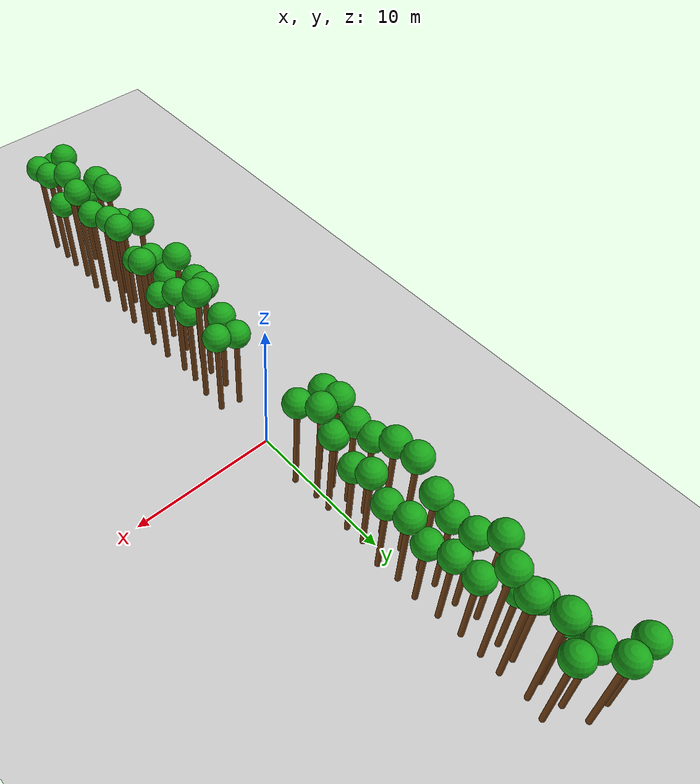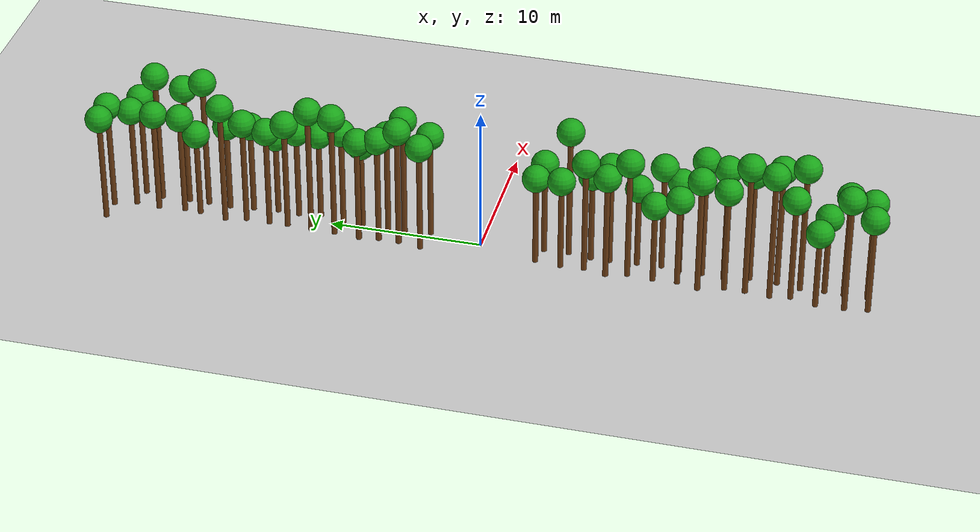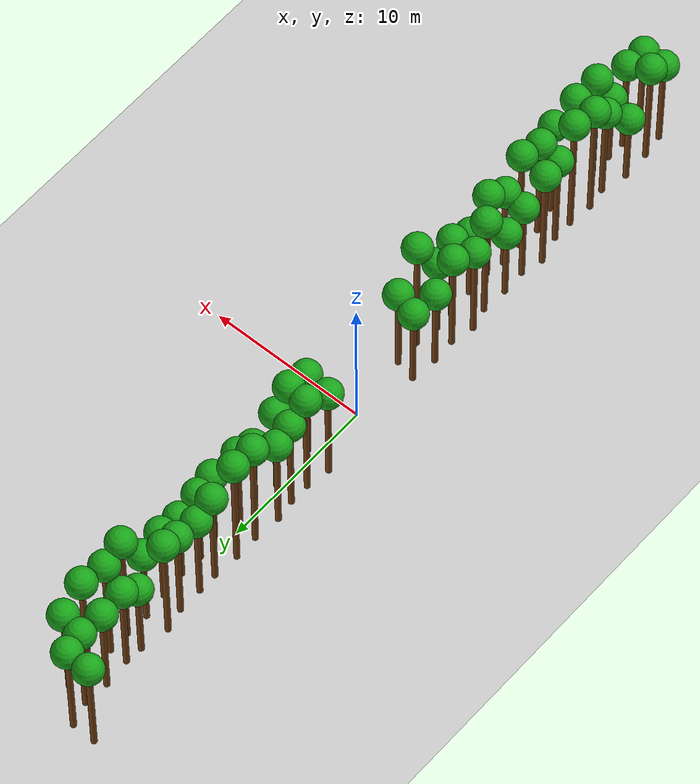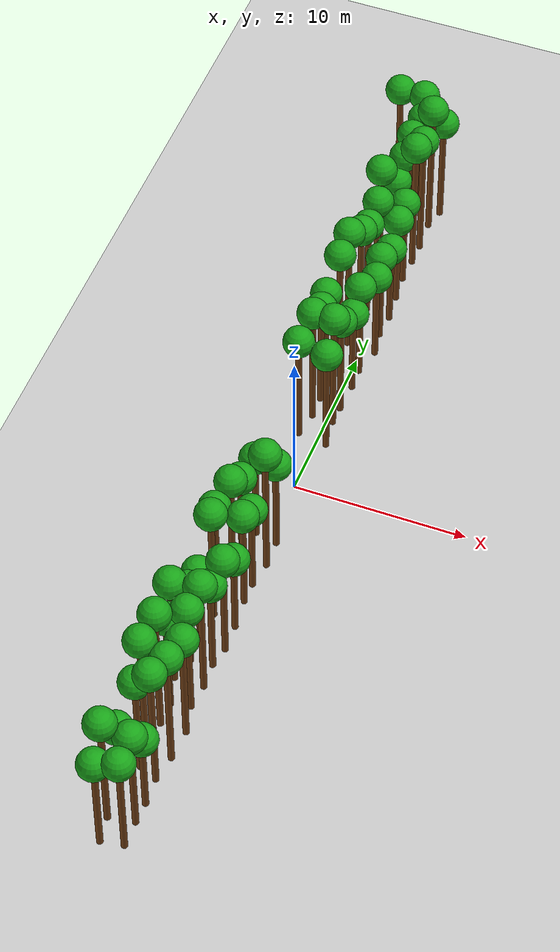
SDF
<sdf version="1.6">
 <world name="forest_world">
  <include><uri>model://sun</uri></include>
  <include><uri>model://ground_plane</uri></include>
  <model name="tree_541">
   <static>true</static>
   <link name="trunk">
    <collision name="collision">
     <pose>-2.70 24.53 3.54 0 0 0</pose>
     <geometry><cylinder><radius>0.18</radius><length>7.07</length></cylinder></geometry>
    </collision>
    <visual name="trunk_visual">
     <pose>-2.70 24.53 3.54 0 0 0</pose>
     <geometry><cylinder><radius>0.18</radius><length>7.07</length></cylinder></geometry>
     <material><ambient>0.35 0.20 0.05 1</ambient><diffuse>0.45 0.25 0.08 1</diffuse></material>
    </visual>
    <visual name="leaf_visual">
     <pose>-2.70 24.53 7.52 0 0 0</pose>
     <geometry><sphere><radius>0.9</radius></sphere></geometry>
     <material><ambient>0.05 0.45 0.05 1</ambient><diffuse>0.10 0.65 0.10 1</diffuse></material>
    </visual>
   </link>
  </model>
  <model name="tree_542">
   <static>true</static>
   <link name="trunk">
    <collision name="collision">
     <pose>-0.90 -25.18 3.19 0 0 0</pose>
     <geometry><cylinder><radius>0.18</radius><length>6.38</length></cylinder></geometry>
    </collision>
    <visual name="trunk_visual">
     <pose>-0.90 -25.18 3.19 0 0 0</pose>
     <geometry><cylinder><radius>0.18</radius><length>6.38</length></cylinder></geometry>
     <material><ambient>0.35 0.20 0.05 1</ambient><diffuse>0.45 0.25 0.08 1</diffuse></material>
    </visual>
    <visual name="leaf_visual">
     <pose>-0.90 -25.18 6.83 0 0 0</pose>
     <geometry><sphere><radius>0.9</radius></sphere></geometry>
     <material><ambient>0.05 0.45 0.05 1</ambient><diffuse>0.10 0.65 0.10 1</diffuse></material>
    </visual>
   </link>
  </model>
  <model name="tree_543">
   <static>true</static>
   <link name="trunk">
    <collision name="collision">
     <pose>-1.11 -23.72 3.88 0 0 0</pose>
     <geometry><cylinder><radius>0.18</radius><length>7.76</length></cylinder></geometry>
    </collision>
    <visual name="trunk_visual">
     <pose>-1.11 -23.72 3.88 0 0 0</pose>
     <geometry><cylinder><radius>0.18</radius><length>7.76</length></cylinder></geometry>
     <material><ambient>0.35 0.20 0.05 1</ambient><diffuse>0.45 0.25 0.08 1</diffuse></material>
    </visual>
    <visual name="leaf_visual">
     <pose>-1.11 -23.72 8.21 0 0 0</pose>
     <geometry><sphere><radius>0.9</radius></sphere></geometry>
     <material><ambient>0.05 0.45 0.05 1</ambient><diffuse>0.10 0.65 0.10 1</diffuse></material>
    </visual>
   </link>
  </model>
  <model name="tree_544">
   <static>true</static>
   <link name="trunk">
    <collision name="collision">
     <pose>-1.16 -21.90 2.51 0 0 0</pose>
     <geometry><cylinder><radius>0.18</radius><length>5.01</length></cylinder></geometry>
    </collision>
    <visual name="trunk_visual">
     <pose>-1.16 -21.90 2.51 0 0 0</pose>
     <geometry><cylinder><radius>0.18</radius><length>5.01</length></cylinder></geometry>
     <material><ambient>0.35 0.20 0.05 1</ambient><diffuse>0.45 0.25 0.08 1</diffuse></material>
    </visual>
    <visual name="leaf_visual">
     <pose>-1.16 -21.90 5.46 0 0 0</pose>
     <geometry><sphere><radius>0.9</radius></sphere></geometry>
     <material><ambient>0.05 0.45 0.05 1</ambient><diffuse>0.10 0.65 0.10 1</diffuse></material>
    </visual>
   </link>
  </model>
  <model name="tree_545">
   <static>true</static>
   <link name="trunk">
    <collision name="collision">
     <pose>-0.75 -20.26 3.47 0 0 0</pose>
     <geometry><cylinder><radius>0.18</radius><length>6.94</length></cylinder></geometry>
    </collision>
    <visual name="trunk_visual">
     <pose>-0.75 -20.26 3.47 0 0 0</pose>
     <geometry><cylinder><radius>0.18</radius><length>6.94</length></cylinder></geometry>
     <material><ambient>0.35 0.20 0.05 1</ambient><diffuse>0.45 0.25 0.08 1</diffuse></material>
    </visual>
    <visual name="leaf_visual">
     <pose>-0.75 -20.26 7.39 0 0 0</pose>
     <geometry><sphere><radius>0.9</radius></sphere></geometry>
     <material><ambient>0.05 0.45 0.05 1</ambient><diffuse>0.10 0.65 0.10 1</diffuse></material>
    </visual>
   </link>
  </model>
  <model name="tree_546">
   <static>true</static>
   <link name="trunk">
    <collision name="collision">
     <pose>-0.96 -18.96 4.32 0 0 0</pose>
     <geometry><cylinder><radius>0.18</radius><length>8.64</length></cylinder></geometry>
    </collision>
    <visual name="trunk_visual">
     <pose>-0.96 -18.96 4.32 0 0 0</pose>
     <geometry><cylinder><radius>0.18</radius><length>8.64</length></cylinder></geometry>
     <material><ambient>0.35 0.20 0.05 1</ambient><diffuse>0.45 0.25 0.08 1</diffuse></material>
    </visual>
    <visual name="leaf_visual">
     <pose>-0.96 -18.96 9.09 0 0 0</pose>
     <geometry><sphere><radius>0.9</radius></sphere></geometry>
     <material><ambient>0.05 0.45 0.05 1</ambient><diffuse>0.10 0.65 0.10 1</diffuse></material>
    </visual>
   </link>
  </model>
  <model name="tree_547">
   <static>true</static>
   <link name="trunk">
    <collision name="collision">
     <pose>-0.81 -17.38 4.47 0 0 0</pose>
     <geometry><cylinder><radius>0.18</radius><length>8.95</length></cylinder></geometry>
    </collision>
    <visual name="trunk_visual">
     <pose>-0.81 -17.38 4.47 0 0 0</pose>
     <geometry><cylinder><radius>0.18</radius><length>8.95</length></cylinder></geometry>
     <material><ambient>0.35 0.20 0.05 1</ambient><diffuse>0.45 0.25 0.08 1</diffuse></material>
    </visual>
    <visual name="leaf_visual">
     <pose>-0.81 -17.38 9.40 0 0 0</pose>
     <geometry><sphere><radius>0.9</radius></sphere></geometry>
     <material><ambient>0.05 0.45 0.05 1</ambient><diffuse>0.10 0.65 0.10 1</diffuse></material>
    </visual>
   </link>
  </model>
  <model name="tree_548">
   <static>true</static>
   <link name="trunk">
    <collision name="collision">
     <pose>-0.81 -16.05 3.47 0 0 0</pose>
     <geometry><cylinder><radius>0.18</radius><length>6.94</length></cylinder></geometry>
    </collision>
    <visual name="trunk_visual">
     <pose>-0.81 -16.05 3.47 0 0 0</pose>
     <geometry><cylinder><radius>0.18</radius><length>6.94</length></cylinder></geometry>
     <material><ambient>0.35 0.20 0.05 1</ambient><diffuse>0.45 0.25 0.08 1</diffuse></material>
    </visual>
    <visual name="leaf_visual">
     <pose>-0.81 -16.05 7.39 0 0 0</pose>
     <geometry><sphere><radius>0.9</radius></sphere></geometry>
     <material><ambient>0.05 0.45 0.05 1</ambient><diffuse>0.10 0.65 0.10 1</diffuse></material>
    </visual>
   </link>
  </model>
  <model name="tree_549">
   <static>true</static>
   <link name="trunk">
    <collision name="collision">
     <pose>-1.24 -14.41 3.86 0 0 0</pose>
     <geometry><cylinder><radius>0.18</radius><length>7.73</length></cylinder></geometry>
    </collision>
    <visual name="trunk_visual">
     <pose>-1.24 -14.41 3.86 0 0 0</pose>
     <geometry><cylinder><radius>0.18</radius><length>7.73</length></cylinder></geometry>
     <material><ambient>0.35 0.20 0.05 1</ambient><diffuse>0.45 0.25 0.08 1</diffuse></material>
    </visual>
    <visual name="leaf_visual">
     <pose>-1.24 -14.41 8.18 0 0 0</pose>
     <geometry><sphere><radius>0.9</radius></sphere></geometry>
     <material><ambient>0.05 0.45 0.05 1</ambient><diffuse>0.10 0.65 0.10 1</diffuse></material>
    </visual>
   </link>
  </model>
  <model name="tree_550">
   <static>true</static>
   <link name="trunk">
    <collision name="collision">
     <pose>-0.89 -13.04 2.93 0 0 0</pose>
     <geometry><cylinder><radius>0.18</radius><length>5.87</length></cylinder></geometry>
    </collision>
    <visual name="trunk_visual">
     <pose>-0.89 -13.04 2.93 0 0 0</pose>
     <geometry><cylinder><radius>0.18</radius><length>5.87</length></cylinder></geometry>
     <material><ambient>0.35 0.20 0.05 1</ambient><diffuse>0.45 0.25 0.08 1</diffuse></material>
    </visual>
    <visual name="leaf_visual">
     <pose>-0.89 -13.04 6.32 0 0 0</pose>
     <geometry><sphere><radius>0.9</radius></sphere></geometry>
     <material><ambient>0.05 0.45 0.05 1</ambient><diffuse>0.10 0.65 0.10 1</diffuse></material>
    </visual>
   </link>
  </model>
  <model name="tree_551">
   <static>true</static>
   <link name="trunk">
    <collision name="collision">
     <pose>-0.97 -11.48 2.61 0 0 0</pose>
     <geometry><cylinder><radius>0.18</radius><length>5.22</length></cylinder></geometry>
    </collision>
    <visual name="trunk_visual">
     <pose>-0.97 -11.48 2.61 0 0 0</pose>
     <geometry><cylinder><radius>0.18</radius><length>5.22</length></cylinder></geometry>
     <material><ambient>0.35 0.20 0.05 1</ambient><diffuse>0.45 0.25 0.08 1</diffuse></material>
    </visual>
    <visual name="leaf_visual">
     <pose>-0.97 -11.48 5.67 0 0 0</pose>
     <geometry><sphere><radius>0.9</radius></sphere></geometry>
     <material><ambient>0.05 0.45 0.05 1</ambient><diffuse>0.10 0.65 0.10 1</diffuse></material>
    </visual>
   </link>
  </model>
  <model name="tree_552">
   <static>true</static>
   <link name="trunk">
    <collision name="collision">
     <pose>-0.86 -9.81 4.03 0 0 0</pose>
     <geometry><cylinder><radius>0.18</radius><length>8.06</length></cylinder></geometry>
    </collision>
    <visual name="trunk_visual">
     <pose>-0.86 -9.81 4.03 0 0 0</pose>
     <geometry><cylinder><radius>0.18</radius><length>8.06</length></cylinder></geometry>
     <material><ambient>0.35 0.20 0.05 1</ambient><diffuse>0.45 0.25 0.08 1</diffuse></material>
    </visual>
    <visual name="leaf_visual">
     <pose>-0.86 -9.81 8.51 0 0 0</pose>
     <geometry><sphere><radius>0.9</radius></sphere></geometry>
     <material><ambient>0.05 0.45 0.05 1</ambient><diffuse>0.10 0.65 0.10 1</diffuse></material>
    </visual>
   </link>
  </model>
  <model name="tree_553">
   <static>true</static>
   <link name="trunk">
    <collision name="collision">
     <pose>-1.20 -8.46 3.48 0 0 0</pose>
     <geometry><cylinder><radius>0.18</radius><length>6.96</length></cylinder></geometry>
    </collision>
    <visual name="trunk_visual">
     <pose>-1.20 -8.46 3.48 0 0 0</pose>
     <geometry><cylinder><radius>0.18</radius><length>6.96</length></cylinder></geometry>
     <material><ambient>0.35 0.20 0.05 1</ambient><diffuse>0.45 0.25 0.08 1</diffuse></material>
    </visual>
    <visual name="leaf_visual">
     <pose>-1.20 -8.46 7.41 0 0 0</pose>
     <geometry><sphere><radius>0.9</radius></sphere></geometry>
     <material><ambient>0.05 0.45 0.05 1</ambient><diffuse>0.10 0.65 0.10 1</diffuse></material>
    </visual>
   </link>
  </model>
  <model name="tree_554">
   <static>true</static>
   <link name="trunk">
    <collision name="collision">
     <pose>-0.88 -7.00 3.79 0 0 0</pose>
     <geometry><cylinder><radius>0.18</radius><length>7.57</length></cylinder></geometry>
    </collision>
    <visual name="trunk_visual">
     <pose>-0.88 -7.00 3.79 0 0 0</pose>
     <geometry><cylinder><radius>0.18</radius><length>7.57</length></cylinder></geometry>
     <material><ambient>0.35 0.20 0.05 1</ambient><diffuse>0.45 0.25 0.08 1</diffuse></material>
    </visual>
    <visual name="leaf_visual">
     <pose>-0.88 -7.00 8.02 0 0 0</pose>
     <geometry><sphere><radius>0.9</radius></sphere></geometry>
     <material><ambient>0.05 0.45 0.05 1</ambient><diffuse>0.10 0.65 0.10 1</diffuse></material>
    </visual>
   </link>
  </model>
  <model name="tree_555">
   <static>true</static>
   <link name="trunk">
    <collision name="collision">
     <pose>-0.95 -5.47 3.02 0 0 0</pose>
     <geometry><cylinder><radius>0.18</radius><length>6.05</length></cylinder></geometry>
    </collision>
    <visual name="trunk_visual">
     <pose>-0.95 -5.47 3.02 0 0 0</pose>
     <geometry><cylinder><radius>0.18</radius><length>6.05</length></cylinder></geometry>
     <material><ambient>0.35 0.20 0.05 1</ambient><diffuse>0.45 0.25 0.08 1</diffuse></material>
    </visual>
    <visual name="leaf_visual">
     <pose>-0.95 -5.47 6.50 0 0 0</pose>
     <geometry><sphere><radius>0.9</radius></sphere></geometry>
     <material><ambient>0.05 0.45 0.05 1</ambient><diffuse>0.10 0.65 0.10 1</diffuse></material>
    </visual>
   </link>
  </model>
  <model name="tree_556">
   <static>true</static>
   <link name="trunk">
    <collision name="collision">
     <pose>-0.78 -3.79 2.95 0 0 0</pose>
     <geometry><cylinder><radius>0.18</radius><length>5.90</length></cylinder></geometry>
    </collision>
    <visual name="trunk_visual">
     <pose>-0.78 -3.79 2.95 0 0 0</pose>
     <geometry><cylinder><radius>0.18</radius><length>5.90</length></cylinder></geometry>
     <material><ambient>0.35 0.20 0.05 1</ambient><diffuse>0.45 0.25 0.08 1</diffuse></material>
    </visual>
    <visual name="leaf_visual">
     <pose>-0.78 -3.79 6.35 0 0 0</pose>
     <geometry><sphere><radius>0.9</radius></sphere></geometry>
     <material><ambient>0.05 0.45 0.05 1</ambient><diffuse>0.10 0.65 0.10 1</diffuse></material>
    </visual>
   </link>
  </model>
  <model name="tree_557">
   <static>true</static>
   <link name="trunk">
    <collision name="collision">
     <pose>-1.16 3.73 3.60 0 0 0</pose>
     <geometry><cylinder><radius>0.18</radius><length>7.21</length></cylinder></geometry>
    </collision>
    <visual name="trunk_visual">
     <pose>-1.16 3.73 3.60 0 0 0</pose>
     <geometry><cylinder><radius>0.18</radius><length>7.21</length></cylinder></geometry>
     <material><ambient>0.35 0.20 0.05 1</ambient><diffuse>0.45 0.25 0.08 1</diffuse></material>
    </visual>
    <visual name="leaf_visual">
     <pose>-1.16 3.73 7.66 0 0 0</pose>
     <geometry><sphere><radius>0.9</radius></sphere></geometry>
     <material><ambient>0.05 0.45 0.05 1</ambient><diffuse>0.10 0.65 0.10 1</diffuse></material>
    </visual>
   </link>
  </model>
  <model name="tree_558">
   <static>true</static>
   <link name="trunk">
    <collision name="collision">
     <pose>-0.91 5.23 4.02 0 0 0</pose>
     <geometry><cylinder><radius>0.18</radius><length>8.05</length></cylinder></geometry>
    </collision>
    <visual name="trunk_visual">
     <pose>-0.91 5.23 4.02 0 0 0</pose>
     <geometry><cylinder><radius>0.18</radius><length>8.05</length></cylinder></geometry>
     <material><ambient>0.35 0.20 0.05 1</ambient><diffuse>0.45 0.25 0.08 1</diffuse></material>
    </visual>
    <visual name="leaf_visual">
     <pose>-0.91 5.23 8.50 0 0 0</pose>
     <geometry><sphere><radius>0.9</radius></sphere></geometry>
     <material><ambient>0.05 0.45 0.05 1</ambient><diffuse>0.10 0.65 0.10 1</diffuse></material>
    </visual>
   </link>
  </model>
  <model name="tree_559">
   <static>true</static>
   <link name="trunk">
    <collision name="collision">
     <pose>-0.92 6.56 3.58 0 0 0</pose>
     <geometry><cylinder><radius>0.18</radius><length>7.15</length></cylinder></geometry>
    </collision>
    <visual name="trunk_visual">
     <pose>-0.92 6.56 3.58 0 0 0</pose>
     <geometry><cylinder><radius>0.18</radius><length>7.15</length></cylinder></geometry>
     <material><ambient>0.35 0.20 0.05 1</ambient><diffuse>0.45 0.25 0.08 1</diffuse></material>
    </visual>
    <visual name="leaf_visual">
     <pose>-0.92 6.56 7.60 0 0 0</pose>
     <geometry><sphere><radius>0.9</radius></sphere></geometry>
     <material><ambient>0.05 0.45 0.05 1</ambient><diffuse>0.10 0.65 0.10 1</diffuse></material>
    </visual>
   </link>
  </model>
  <model name="tree_560">
   <static>true</static>
   <link name="trunk">
    <collision name="collision">
     <pose>-1.10 7.84 3.48 0 0 0</pose>
     <geometry><cylinder><radius>0.18</radius><length>6.96</length></cylinder></geometry>
    </collision>
    <visual name="trunk_visual">
     <pose>-1.10 7.84 3.48 0 0 0</pose>
     <geometry><cylinder><radius>0.18</radius><length>6.96</length></cylinder></geometry>
     <material><ambient>0.35 0.20 0.05 1</ambient><diffuse>0.45 0.25 0.08 1</diffuse></material>
    </visual>
    <visual name="leaf_visual">
     <pose>-1.10 7.84 7.41 0 0 0</pose>
     <geometry><sphere><radius>0.9</radius></sphere></geometry>
     <material><ambient>0.05 0.45 0.05 1</ambient><diffuse>0.10 0.65 0.10 1</diffuse></material>
    </visual>
   </link>
  </model>
  <model name="tree_561">
   <static>true</static>
   <link name="trunk">
    <collision name="collision">
     <pose>-0.93 9.54 4.19 0 0 0</pose>
     <geometry><cylinder><radius>0.18</radius><length>8.39</length></cylinder></geometry>
    </collision>
    <visual name="trunk_visual">
     <pose>-0.93 9.54 4.19 0 0 0</pose>
     <geometry><cylinder><radius>0.18</radius><length>8.39</length></cylinder></geometry>
     <material><ambient>0.35 0.20 0.05 1</ambient><diffuse>0.45 0.25 0.08 1</diffuse></material>
    </visual>
    <visual name="leaf_visual">
     <pose>-0.93 9.54 8.84 0 0 0</pose>
     <geometry><sphere><radius>0.9</radius></sphere></geometry>
     <material><ambient>0.05 0.45 0.05 1</ambient><diffuse>0.10 0.65 0.10 1</diffuse></material>
    </visual>
   </link>
  </model>
  <model name="tree_562">
   <static>true</static>
   <link name="trunk">
    <collision name="collision">
     <pose>-0.96 11.09 4.33 0 0 0</pose>
     <geometry><cylinder><radius>0.18</radius><length>8.65</length></cylinder></geometry>
    </collision>
    <visual name="trunk_visual">
     <pose>-0.96 11.09 4.33 0 0 0</pose>
     <geometry><cylinder><radius>0.18</radius><length>8.65</length></cylinder></geometry>
     <material><ambient>0.35 0.20 0.05 1</ambient><diffuse>0.45 0.25 0.08 1</diffuse></material>
    </visual>
    <visual name="leaf_visual">
     <pose>-0.96 11.09 9.10 0 0 0</pose>
     <geometry><sphere><radius>0.9</radius></sphere></geometry>
     <material><ambient>0.05 0.45 0.05 1</ambient><diffuse>0.10 0.65 0.10 1</diffuse></material>
    </visual>
   </link>
  </model>
  <model name="tree_563">
   <static>true</static>
   <link name="trunk">
    <collision name="collision">
     <pose>-0.83 12.73 3.66 0 0 0</pose>
     <geometry><cylinder><radius>0.18</radius><length>7.32</length></cylinder></geometry>
    </collision>
    <visual name="trunk_visual">
     <pose>-0.83 12.73 3.66 0 0 0</pose>
     <geometry><cylinder><radius>0.18</radius><length>7.32</length></cylinder></geometry>
     <material><ambient>0.35 0.20 0.05 1</ambient><diffuse>0.45 0.25 0.08 1</diffuse></material>
    </visual>
    <visual name="leaf_visual">
     <pose>-0.83 12.73 7.77 0 0 0</pose>
     <geometry><sphere><radius>0.9</radius></sphere></geometry>
     <material><ambient>0.05 0.45 0.05 1</ambient><diffuse>0.10 0.65 0.10 1</diffuse></material>
    </visual>
   </link>
  </model>
  <model name="tree_564">
   <static>true</static>
   <link name="trunk">
    <collision name="collision">
     <pose>-0.84 13.97 3.29 0 0 0</pose>
     <geometry><cylinder><radius>0.18</radius><length>6.59</length></cylinder></geometry>
    </collision>
    <visual name="trunk_visual">
     <pose>-0.84 13.97 3.29 0 0 0</pose>
     <geometry><cylinder><radius>0.18</radius><length>6.59</length></cylinder></geometry>
     <material><ambient>0.35 0.20 0.05 1</ambient><diffuse>0.45 0.25 0.08 1</diffuse></material>
    </visual>
    <visual name="leaf_visual">
     <pose>-0.84 13.97 7.04 0 0 0</pose>
     <geometry><sphere><radius>0.9</radius></sphere></geometry>
     <material><ambient>0.05 0.45 0.05 1</ambient><diffuse>0.10 0.65 0.10 1</diffuse></material>
    </visual>
   </link>
  </model>
  <model name="tree_565">
   <static>true</static>
   <link name="trunk">
    <collision name="collision">
     <pose>-0.84 15.53 3.48 0 0 0</pose>
     <geometry><cylinder><radius>0.18</radius><length>6.97</length></cylinder></geometry>
    </collision>
    <visual name="trunk_visual">
     <pose>-0.84 15.53 3.48 0 0 0</pose>
     <geometry><cylinder><radius>0.18</radius><length>6.97</length></cylinder></geometry>
     <material><ambient>0.35 0.20 0.05 1</ambient><diffuse>0.45 0.25 0.08 1</diffuse></material>
    </visual>
    <visual name="leaf_visual">
     <pose>-0.84 15.53 7.42 0 0 0</pose>
     <geometry><sphere><radius>0.9</radius></sphere></geometry>
     <material><ambient>0.05 0.45 0.05 1</ambient><diffuse>0.10 0.65 0.10 1</diffuse></material>
    </visual>
   </link>
  </model>
  <model name="tree_566">
   <static>true</static>
   <link name="trunk">
    <collision name="collision">
     <pose>-1.15 16.88 4.06 0 0 0</pose>
     <geometry><cylinder><radius>0.18</radius><length>8.11</length></cylinder></geometry>
    </collision>
    <visual name="trunk_visual">
     <pose>-1.15 16.88 4.06 0 0 0</pose>
     <geometry><cylinder><radius>0.18</radius><length>8.11</length></cylinder></geometry>
     <material><ambient>0.35 0.20 0.05 1</ambient><diffuse>0.45 0.25 0.08 1</diffuse></material>
    </visual>
    <visual name="leaf_visual">
     <pose>-1.15 16.88 8.56 0 0 0</pose>
     <geometry><sphere><radius>0.9</radius></sphere></geometry>
     <material><ambient>0.05 0.45 0.05 1</ambient><diffuse>0.10 0.65 0.10 1</diffuse></material>
    </visual>
   </link>
  </model>
  <model name="tree_567">
   <static>true</static>
   <link name="trunk">
    <collision name="collision">
     <pose>-0.84 18.69 2.82 0 0 0</pose>
     <geometry><cylinder><radius>0.18</radius><length>5.64</length></cylinder></geometry>
    </collision>
    <visual name="trunk_visual">
     <pose>-0.84 18.69 2.82 0 0 0</pose>
     <geometry><cylinder><radius>0.18</radius><length>5.64</length></cylinder></geometry>
     <material><ambient>0.35 0.20 0.05 1</ambient><diffuse>0.45 0.25 0.08 1</diffuse></material>
    </visual>
    <visual name="leaf_visual">
     <pose>-0.84 18.69 6.09 0 0 0</pose>
     <geometry><sphere><radius>0.9</radius></sphere></geometry>
     <material><ambient>0.05 0.45 0.05 1</ambient><diffuse>0.10 0.65 0.10 1</diffuse></material>
    </visual>
   </link>
  </model>
  <model name="tree_568">
   <static>true</static>
   <link name="trunk">
    <collision name="collision">
     <pose>-0.76 19.78 3.34 0 0 0</pose>
     <geometry><cylinder><radius>0.18</radius><length>6.67</length></cylinder></geometry>
    </collision>
    <visual name="trunk_visual">
     <pose>-0.76 19.78 3.34 0 0 0</pose>
     <geometry><cylinder><radius>0.18</radius><length>6.67</length></cylinder></geometry>
     <material><ambient>0.35 0.20 0.05 1</ambient><diffuse>0.45 0.25 0.08 1</diffuse></material>
    </visual>
    <visual name="leaf_visual">
     <pose>-0.76 19.78 7.12 0 0 0</pose>
     <geometry><sphere><radius>0.9</radius></sphere></geometry>
     <material><ambient>0.05 0.45 0.05 1</ambient><diffuse>0.10 0.65 0.10 1</diffuse></material>
    </visual>
   </link>
  </model>
  <model name="tree_569">
   <static>true</static>
   <link name="trunk">
    <collision name="collision">
     <pose>-0.91 21.51 3.38 0 0 0</pose>
     <geometry><cylinder><radius>0.18</radius><length>6.75</length></cylinder></geometry>
    </collision>
    <visual name="trunk_visual">
     <pose>-0.91 21.51 3.38 0 0 0</pose>
     <geometry><cylinder><radius>0.18</radius><length>6.75</length></cylinder></geometry>
     <material><ambient>0.35 0.20 0.05 1</ambient><diffuse>0.45 0.25 0.08 1</diffuse></material>
    </visual>
    <visual name="leaf_visual">
     <pose>-0.91 21.51 7.20 0 0 0</pose>
     <geometry><sphere><radius>0.9</radius></sphere></geometry>
     <material><ambient>0.05 0.45 0.05 1</ambient><diffuse>0.10 0.65 0.10 1</diffuse></material>
    </visual>
   </link>
  </model>
  <model name="tree_570">
   <static>true</static>
   <link name="trunk">
    <collision name="collision">
     <pose>-0.80 23.08 3.36 0 0 0</pose>
     <geometry><cylinder><radius>0.18</radius><length>6.72</length></cylinder></geometry>
    </collision>
    <visual name="trunk_visual">
     <pose>-0.80 23.08 3.36 0 0 0</pose>
     <geometry><cylinder><radius>0.18</radius><length>6.72</length></cylinder></geometry>
     <material><ambient>0.35 0.20 0.05 1</ambient><diffuse>0.45 0.25 0.08 1</diffuse></material>
    </visual>
    <visual name="leaf_visual">
     <pose>-0.80 23.08 7.17 0 0 0</pose>
     <geometry><sphere><radius>0.9</radius></sphere></geometry>
     <material><ambient>0.05 0.45 0.05 1</ambient><diffuse>0.10 0.65 0.10 1</diffuse></material>
    </visual>
   </link>
  </model>
  <model name="tree_571">
   <static>true</static>
   <link name="trunk">
    <collision name="collision">
     <pose>-1.21 24.50 3.55 0 0 0</pose>
     <geometry><cylinder><radius>0.18</radius><length>7.11</length></cylinder></geometry>
    </collision>
    <visual name="trunk_visual">
     <pose>-1.21 24.50 3.55 0 0 0</pose>
     <geometry><cylinder><radius>0.18</radius><length>7.11</length></cylinder></geometry>
     <material><ambient>0.35 0.20 0.05 1</ambient><diffuse>0.45 0.25 0.08 1</diffuse></material>
    </visual>
    <visual name="leaf_visual">
     <pose>-1.21 24.50 7.56 0 0 0</pose>
     <geometry><sphere><radius>0.9</radius></sphere></geometry>
     <material><ambient>0.05 0.45 0.05 1</ambient><diffuse>0.10 0.65 0.10 1</diffuse></material>
    </visual>
   </link>
  </model>
  <model name="tree_572">
   <static>true</static>
   <link name="trunk">
    <collision name="collision">
     <pose>0.36 -24.97 3.38 0 0 0</pose>
     <geometry><cylinder><radius>0.18</radius><length>6.76</length></cylinder></geometry>
    </collision>
    <visual name="trunk_visual">
     <pose>0.36 -24.97 3.38 0 0 0</pose>
     <geometry><cylinder><radius>0.18</radius><length>6.76</length></cylinder></geometry>
     <material><ambient>0.35 0.20 0.05 1</ambient><diffuse>0.45 0.25 0.08 1</diffuse></material>
    </visual>
    <visual name="leaf_visual">
     <pose>0.36 -24.97 7.21 0 0 0</pose>
     <geometry><sphere><radius>0.9</radius></sphere></geometry>
     <material><ambient>0.05 0.45 0.05 1</ambient><diffuse>0.10 0.65 0.10 1</diffuse></material>
    </visual>
   </link>
  </model>
  <model name="tree_573">
   <static>true</static>
   <link name="trunk">
    <collision name="collision">
     <pose>0.35 -23.48 3.52 0 0 0</pose>
     <geometry><cylinder><radius>0.18</radius><length>7.04</length></cylinder></geometry>
    </collision>
    <visual name="trunk_visual">
     <pose>0.35 -23.48 3.52 0 0 0</pose>
     <geometry><cylinder><radius>0.18</radius><length>7.04</length></cylinder></geometry>
     <material><ambient>0.35 0.20 0.05 1</ambient><diffuse>0.45 0.25 0.08 1</diffuse></material>
    </visual>
    <visual name="leaf_visual">
     <pose>0.35 -23.48 7.49 0 0 0</pose>
     <geometry><sphere><radius>0.9</radius></sphere></geometry>
     <material><ambient>0.05 0.45 0.05 1</ambient><diffuse>0.10 0.65 0.10 1</diffuse></material>
    </visual>
   </link>
  </model>
  <model name="tree_574">
   <static>true</static>
   <link name="trunk">
    <collision name="collision">
     <pose>0.38 -22.25 2.61 0 0 0</pose>
     <geometry><cylinder><radius>0.18</radius><length>5.22</length></cylinder></geometry>
    </collision>
    <visual name="trunk_visual">
     <pose>0.38 -22.25 2.61 0 0 0</pose>
     <geometry><cylinder><radius>0.18</radius><length>5.22</length></cylinder></geometry>
     <material><ambient>0.35 0.20 0.05 1</ambient><diffuse>0.45 0.25 0.08 1</diffuse></material>
    </visual>
    <visual name="leaf_visual">
     <pose>0.38 -22.25 5.67 0 0 0</pose>
     <geometry><sphere><radius>0.9</radius></sphere></geometry>
     <material><ambient>0.05 0.45 0.05 1</ambient><diffuse>0.10 0.65 0.10 1</diffuse></material>
    </visual>
   </link>
  </model>
  <model name="tree_575">
   <static>true</static>
   <link name="trunk">
    <collision name="collision">
     <pose>0.30 -20.70 4.33 0 0 0</pose>
     <geometry><cylinder><radius>0.18</radius><length>8.66</length></cylinder></geometry>
    </collision>
    <visual name="trunk_visual">
     <pose>0.30 -20.70 4.33 0 0 0</pose>
     <geometry><cylinder><radius>0.18</radius><length>8.66</length></cylinder></geometry>
     <material><ambient>0.35 0.20 0.05 1</ambient><diffuse>0.45 0.25 0.08 1</diffuse></material>
    </visual>
    <visual name="leaf_visual">
     <pose>0.30 -20.70 9.11 0 0 0</pose>
     <geometry><sphere><radius>0.9</radius></sphere></geometry>
     <material><ambient>0.05 0.45 0.05 1</ambient><diffuse>0.10 0.65 0.10 1</diffuse></material>
    </visual>
   </link>
  </model>
  <model name="tree_576">
   <static>true</static>
   <link name="trunk">
    <collision name="collision">
     <pose>0.54 -19.19 4.10 0 0 0</pose>
     <geometry><cylinder><radius>0.18</radius><length>8.20</length></cylinder></geometry>
    </collision>
    <visual name="trunk_visual">
     <pose>0.54 -19.19 4.10 0 0 0</pose>
     <geometry><cylinder><radius>0.18</radius><length>8.20</length></cylinder></geometry>
     <material><ambient>0.35 0.20 0.05 1</ambient><diffuse>0.45 0.25 0.08 1</diffuse></material>
    </visual>
    <visual name="leaf_visual">
     <pose>0.54 -19.19 8.65 0 0 0</pose>
     <geometry><sphere><radius>0.9</radius></sphere></geometry>
     <material><ambient>0.05 0.45 0.05 1</ambient><diffuse>0.10 0.65 0.10 1</diffuse></material>
    </visual>
   </link>
  </model>
  <model name="tree_577">
   <static>true</static>
   <link name="trunk">
    <collision name="collision">
     <pose>0.64 -17.42 3.76 0 0 0</pose>
     <geometry><cylinder><radius>0.18</radius><length>7.51</length></cylinder></geometry>
    </collision>
    <visual name="trunk_visual">
     <pose>0.64 -17.42 3.76 0 0 0</pose>
     <geometry><cylinder><radius>0.18</radius><length>7.51</length></cylinder></geometry>
     <material><ambient>0.35 0.20 0.05 1</ambient><diffuse>0.45 0.25 0.08 1</diffuse></material>
    </visual>
    <visual name="leaf_visual">
     <pose>0.64 -17.42 7.96 0 0 0</pose>
     <geometry><sphere><radius>0.9</radius></sphere></geometry>
     <material><ambient>0.05 0.45 0.05 1</ambient><diffuse>0.10 0.65 0.10 1</diffuse></material>
    </visual>
   </link>
  </model>
  <model name="tree_578">
   <static>true</static>
   <link name="trunk">
    <collision name="collision">
     <pose>0.26 -15.82 3.92 0 0 0</pose>
     <geometry><cylinder><radius>0.18</radius><length>7.85</length></cylinder></geometry>
    </collision>
    <visual name="trunk_visual">
     <pose>0.26 -15.82 3.92 0 0 0</pose>
     <geometry><cylinder><radius>0.18</radius><length>7.85</length></cylinder></geometry>
     <material><ambient>0.35 0.20 0.05 1</ambient><diffuse>0.45 0.25 0.08 1</diffuse></material>
    </visual>
    <visual name="leaf_visual">
     <pose>0.26 -15.82 8.30 0 0 0</pose>
     <geometry><sphere><radius>0.9</radius></sphere></geometry>
     <material><ambient>0.05 0.45 0.05 1</ambient><diffuse>0.10 0.65 0.10 1</diffuse></material>
    </visual>
   </link>
  </model>
  <model name="tree_579">
   <static>true</static>
   <link name="trunk">
    <collision name="collision">
     <pose>0.41 -14.39 4.07 0 0 0</pose>
     <geometry><cylinder><radius>0.18</radius><length>8.15</length></cylinder></geometry>
    </collision>
    <visual name="trunk_visual">
     <pose>0.41 -14.39 4.07 0 0 0</pose>
     <geometry><cylinder><radius>0.18</radius><length>8.15</length></cylinder></geometry>
     <material><ambient>0.35 0.20 0.05 1</ambient><diffuse>0.45 0.25 0.08 1</diffuse></material>
    </visual>
    <visual name="leaf_visual">
     <pose>0.41 -14.39 8.60 0 0 0</pose>
     <geometry><sphere><radius>0.9</radius></sphere></geometry>
     <material><ambient>0.05 0.45 0.05 1</ambient><diffuse>0.10 0.65 0.10 1</diffuse></material>
    </visual>
   </link>
  </model>
  <model name="tree_580">
   <static>true</static>
   <link name="trunk">
    <collision name="collision">
     <pose>0.32 -12.91 3.18 0 0 0</pose>
     <geometry><cylinder><radius>0.18</radius><length>6.37</length></cylinder></geometry>
    </collision>
    <visual name="trunk_visual">
     <pose>0.32 -12.91 3.18 0 0 0</pose>
     <geometry><cylinder><radius>0.18</radius><length>6.37</length></cylinder></geometry>
     <material><ambient>0.35 0.20 0.05 1</ambient><diffuse>0.45 0.25 0.08 1</diffuse></material>
    </visual>
    <visual name="leaf_visual">
     <pose>0.32 -12.91 6.82 0 0 0</pose>
     <geometry><sphere><radius>0.9</radius></sphere></geometry>
     <material><ambient>0.05 0.45 0.05 1</ambient><diffuse>0.10 0.65 0.10 1</diffuse></material>
    </visual>
   </link>
  </model>
  <model name="tree_581">
   <static>true</static>
   <link name="trunk">
    <collision name="collision">
     <pose>0.56 -11.74 3.57 0 0 0</pose>
     <geometry><cylinder><radius>0.18</radius><length>7.13</length></cylinder></geometry>
    </collision>
    <visual name="trunk_visual">
     <pose>0.56 -11.74 3.57 0 0 0</pose>
     <geometry><cylinder><radius>0.18</radius><length>7.13</length></cylinder></geometry>
     <material><ambient>0.35 0.20 0.05 1</ambient><diffuse>0.45 0.25 0.08 1</diffuse></material>
    </visual>
    <visual name="leaf_visual">
     <pose>0.56 -11.74 7.58 0 0 0</pose>
     <geometry><sphere><radius>0.9</radius></sphere></geometry>
     <material><ambient>0.05 0.45 0.05 1</ambient><diffuse>0.10 0.65 0.10 1</diffuse></material>
    </visual>
   </link>
  </model>
  <model name="tree_582">
   <static>true</static>
   <link name="trunk">
    <collision name="collision">
     <pose>0.50 -10.16 2.67 0 0 0</pose>
     <geometry><cylinder><radius>0.18</radius><length>5.34</length></cylinder></geometry>
    </collision>
    <visual name="trunk_visual">
     <pose>0.50 -10.16 2.67 0 0 0</pose>
     <geometry><cylinder><radius>0.18</radius><length>5.34</length></cylinder></geometry>
     <material><ambient>0.35 0.20 0.05 1</ambient><diffuse>0.45 0.25 0.08 1</diffuse></material>
    </visual>
    <visual name="leaf_visual">
     <pose>0.50 -10.16 5.79 0 0 0</pose>
     <geometry><sphere><radius>0.9</radius></sphere></geometry>
     <material><ambient>0.05 0.45 0.05 1</ambient><diffuse>0.10 0.65 0.10 1</diffuse></material>
    </visual>
   </link>
  </model>
  <model name="tree_583">
   <static>true</static>
   <link name="trunk">
    <collision name="collision">
     <pose>0.33 -8.40 3.40 0 0 0</pose>
     <geometry><cylinder><radius>0.18</radius><length>6.79</length></cylinder></geometry>
    </collision>
    <visual name="trunk_visual">
     <pose>0.33 -8.40 3.40 0 0 0</pose>
     <geometry><cylinder><radius>0.18</radius><length>6.79</length></cylinder></geometry>
     <material><ambient>0.35 0.20 0.05 1</ambient><diffuse>0.45 0.25 0.08 1</diffuse></material>
    </visual>
    <visual name="leaf_visual">
     <pose>0.33 -8.40 7.24 0 0 0</pose>
     <geometry><sphere><radius>0.9</radius></sphere></geometry>
     <material><ambient>0.05 0.45 0.05 1</ambient><diffuse>0.10 0.65 0.10 1</diffuse></material>
    </visual>
   </link>
  </model>
  <model name="tree_584">
   <static>true</static>
   <link name="trunk">
    <collision name="collision">
     <pose>0.33 -7.18 2.95 0 0 0</pose>
     <geometry><cylinder><radius>0.18</radius><length>5.90</length></cylinder></geometry>
    </collision>
    <visual name="trunk_visual">
     <pose>0.33 -7.18 2.95 0 0 0</pose>
     <geometry><cylinder><radius>0.18</radius><length>5.90</length></cylinder></geometry>
     <material><ambient>0.35 0.20 0.05 1</ambient><diffuse>0.45 0.25 0.08 1</diffuse></material>
    </visual>
    <visual name="leaf_visual">
     <pose>0.33 -7.18 6.35 0 0 0</pose>
     <geometry><sphere><radius>0.9</radius></sphere></geometry>
     <material><ambient>0.05 0.45 0.05 1</ambient><diffuse>0.10 0.65 0.10 1</diffuse></material>
    </visual>
   </link>
  </model>
  <model name="tree_585">
   <static>true</static>
   <link name="trunk">
    <collision name="collision">
     <pose>0.55 -5.68 4.42 0 0 0</pose>
     <geometry><cylinder><radius>0.18</radius><length>8.83</length></cylinder></geometry>
    </collision>
    <visual name="trunk_visual">
     <pose>0.55 -5.68 4.42 0 0 0</pose>
     <geometry><cylinder><radius>0.18</radius><length>8.83</length></cylinder></geometry>
     <material><ambient>0.35 0.20 0.05 1</ambient><diffuse>0.45 0.25 0.08 1</diffuse></material>
    </visual>
    <visual name="leaf_visual">
     <pose>0.55 -5.68 9.28 0 0 0</pose>
     <geometry><sphere><radius>0.9</radius></sphere></geometry>
     <material><ambient>0.05 0.45 0.05 1</ambient><diffuse>0.10 0.65 0.10 1</diffuse></material>
    </visual>
   </link>
  </model>
  <model name="tree_586">
   <static>true</static>
   <link name="trunk">
    <collision name="collision">
     <pose>0.50 -4.07 3.11 0 0 0</pose>
     <geometry><cylinder><radius>0.18</radius><length>6.21</length></cylinder></geometry>
    </collision>
    <visual name="trunk_visual">
     <pose>0.50 -4.07 3.11 0 0 0</pose>
     <geometry><cylinder><radius>0.18</radius><length>6.21</length></cylinder></geometry>
     <material><ambient>0.35 0.20 0.05 1</ambient><diffuse>0.45 0.25 0.08 1</diffuse></material>
    </visual>
    <visual name="leaf_visual">
     <pose>0.50 -4.07 6.66 0 0 0</pose>
     <geometry><sphere><radius>0.9</radius></sphere></geometry>
     <material><ambient>0.05 0.45 0.05 1</ambient><diffuse>0.10 0.65 0.10 1</diffuse></material>
    </visual>
   </link>
  </model>
  <model name="tree_587">
   <static>true</static>
   <link name="trunk">
    <collision name="collision">
     <pose>0.56 3.47 3.53 0 0 0</pose>
     <geometry><cylinder><radius>0.18</radius><length>7.06</length></cylinder></geometry>
    </collision>
    <visual name="trunk_visual">
     <pose>0.56 3.47 3.53 0 0 0</pose>
     <geometry><cylinder><radius>0.18</radius><length>7.06</length></cylinder></geometry>
     <material><ambient>0.35 0.20 0.05 1</ambient><diffuse>0.45 0.25 0.08 1</diffuse></material>
    </visual>
    <visual name="leaf_visual">
     <pose>0.56 3.47 7.51 0 0 0</pose>
     <geometry><sphere><radius>0.9</radius></sphere></geometry>
     <material><ambient>0.05 0.45 0.05 1</ambient><diffuse>0.10 0.65 0.10 1</diffuse></material>
    </visual>
   </link>
  </model>
  <model name="tree_588">
   <static>true</static>
   <link name="trunk">
    <collision name="collision">
     <pose>0.33 5.17 4.06 0 0 0</pose>
     <geometry><cylinder><radius>0.18</radius><length>8.12</length></cylinder></geometry>
    </collision>
    <visual name="trunk_visual">
     <pose>0.33 5.17 4.06 0 0 0</pose>
     <geometry><cylinder><radius>0.18</radius><length>8.12</length></cylinder></geometry>
     <material><ambient>0.35 0.20 0.05 1</ambient><diffuse>0.45 0.25 0.08 1</diffuse></material>
    </visual>
    <visual name="leaf_visual">
     <pose>0.33 5.17 8.57 0 0 0</pose>
     <geometry><sphere><radius>0.9</radius></sphere></geometry>
     <material><ambient>0.05 0.45 0.05 1</ambient><diffuse>0.10 0.65 0.10 1</diffuse></material>
    </visual>
   </link>
  </model>
  <model name="tree_589">
   <static>true</static>
   <link name="trunk">
    <collision name="collision">
     <pose>0.36 6.28 3.40 0 0 0</pose>
     <geometry><cylinder><radius>0.18</radius><length>6.81</length></cylinder></geometry>
    </collision>
    <visual name="trunk_visual">
     <pose>0.36 6.28 3.40 0 0 0</pose>
     <geometry><cylinder><radius>0.18</radius><length>6.81</length></cylinder></geometry>
     <material><ambient>0.35 0.20 0.05 1</ambient><diffuse>0.45 0.25 0.08 1</diffuse></material>
    </visual>
    <visual name="leaf_visual">
     <pose>0.36 6.28 7.26 0 0 0</pose>
     <geometry><sphere><radius>0.9</radius></sphere></geometry>
     <material><ambient>0.05 0.45 0.05 1</ambient><diffuse>0.10 0.65 0.10 1</diffuse></material>
    </visual>
   </link>
  </model>
  <model name="tree_590">
   <static>true</static>
   <link name="trunk">
    <collision name="collision">
     <pose>0.43 8.02 2.84 0 0 0</pose>
     <geometry><cylinder><radius>0.18</radius><length>5.67</length></cylinder></geometry>
    </collision>
    <visual name="trunk_visual">
     <pose>0.43 8.02 2.84 0 0 0</pose>
     <geometry><cylinder><radius>0.18</radius><length>5.67</length></cylinder></geometry>
     <material><ambient>0.35 0.20 0.05 1</ambient><diffuse>0.45 0.25 0.08 1</diffuse></material>
    </visual>
    <visual name="leaf_visual">
     <pose>0.43 8.02 6.12 0 0 0</pose>
     <geometry><sphere><radius>0.9</radius></sphere></geometry>
     <material><ambient>0.05 0.45 0.05 1</ambient><diffuse>0.10 0.65 0.10 1</diffuse></material>
    </visual>
   </link>
  </model>
  <model name="tree_591">
   <static>true</static>
   <link name="trunk">
    <collision name="collision">
     <pose>0.38 9.31 3.24 0 0 0</pose>
     <geometry><cylinder><radius>0.18</radius><length>6.48</length></cylinder></geometry>
    </collision>
    <visual name="trunk_visual">
     <pose>0.38 9.31 3.24 0 0 0</pose>
     <geometry><cylinder><radius>0.18</radius><length>6.48</length></cylinder></geometry>
     <material><ambient>0.35 0.20 0.05 1</ambient><diffuse>0.45 0.25 0.08 1</diffuse></material>
    </visual>
    <visual name="leaf_visual">
     <pose>0.38 9.31 6.93 0 0 0</pose>
     <geometry><sphere><radius>0.9</radius></sphere></geometry>
     <material><ambient>0.05 0.45 0.05 1</ambient><diffuse>0.10 0.65 0.10 1</diffuse></material>
    </visual>
   </link>
  </model>
  <model name="tree_592">
   <static>true</static>
   <link name="trunk">
    <collision name="collision">
     <pose>0.75 10.95 2.91 0 0 0</pose>
     <geometry><cylinder><radius>0.18</radius><length>5.83</length></cylinder></geometry>
    </collision>
    <visual name="trunk_visual">
     <pose>0.75 10.95 2.91 0 0 0</pose>
     <geometry><cylinder><radius>0.18</radius><length>5.83</length></cylinder></geometry>
     <material><ambient>0.35 0.20 0.05 1</ambient><diffuse>0.45 0.25 0.08 1</diffuse></material>
    </visual>
    <visual name="leaf_visual">
     <pose>0.75 10.95 6.28 0 0 0</pose>
     <geometry><sphere><radius>0.9</radius></sphere></geometry>
     <material><ambient>0.05 0.45 0.05 1</ambient><diffuse>0.10 0.65 0.10 1</diffuse></material>
    </visual>
   </link>
  </model>
  <model name="tree_593">
   <static>true</static>
   <link name="trunk">
    <collision name="collision">
     <pose>0.52 12.37 2.98 0 0 0</pose>
     <geometry><cylinder><radius>0.18</radius><length>5.96</length></cylinder></geometry>
    </collision>
    <visual name="trunk_visual">
     <pose>0.52 12.37 2.98 0 0 0</pose>
     <geometry><cylinder><radius>0.18</radius><length>5.96</length></cylinder></geometry>
     <material><ambient>0.35 0.20 0.05 1</ambient><diffuse>0.45 0.25 0.08 1</diffuse></material>
    </visual>
    <visual name="leaf_visual">
     <pose>0.52 12.37 6.41 0 0 0</pose>
     <geometry><sphere><radius>0.9</radius></sphere></geometry>
     <material><ambient>0.05 0.45 0.05 1</ambient><diffuse>0.10 0.65 0.10 1</diffuse></material>
    </visual>
   </link>
  </model>
  <model name="tree_594">
   <static>true</static>
   <link name="trunk">
    <collision name="collision">
     <pose>0.60 13.81 2.64 0 0 0</pose>
     <geometry><cylinder><radius>0.18</radius><length>5.29</length></cylinder></geometry>
    </collision>
    <visual name="trunk_visual">
     <pose>0.60 13.81 2.64 0 0 0</pose>
     <geometry><cylinder><radius>0.18</radius><length>5.29</length></cylinder></geometry>
     <material><ambient>0.35 0.20 0.05 1</ambient><diffuse>0.45 0.25 0.08 1</diffuse></material>
    </visual>
    <visual name="leaf_visual">
     <pose>0.60 13.81 5.74 0 0 0</pose>
     <geometry><sphere><radius>0.9</radius></sphere></geometry>
     <material><ambient>0.05 0.45 0.05 1</ambient><diffuse>0.10 0.65 0.10 1</diffuse></material>
    </visual>
   </link>
  </model>
  <model name="tree_595">
   <static>true</static>
   <link name="trunk">
    <collision name="collision">
     <pose>0.43 15.43 2.99 0 0 0</pose>
     <geometry><cylinder><radius>0.18</radius><length>5.98</length></cylinder></geometry>
    </collision>
    <visual name="trunk_visual">
     <pose>0.43 15.43 2.99 0 0 0</pose>
     <geometry><cylinder><radius>0.18</radius><length>5.98</length></cylinder></geometry>
     <material><ambient>0.35 0.20 0.05 1</ambient><diffuse>0.45 0.25 0.08 1</diffuse></material>
    </visual>
    <visual name="leaf_visual">
     <pose>0.43 15.43 6.43 0 0 0</pose>
     <geometry><sphere><radius>0.9</radius></sphere></geometry>
     <material><ambient>0.05 0.45 0.05 1</ambient><diffuse>0.10 0.65 0.10 1</diffuse></material>
    </visual>
   </link>
  </model>
  <model name="tree_596">
   <static>true</static>
   <link name="trunk">
    <collision name="collision">
     <pose>0.28 17.00 2.91 0 0 0</pose>
     <geometry><cylinder><radius>0.18</radius><length>5.82</length></cylinder></geometry>
    </collision>
    <visual name="trunk_visual">
     <pose>0.28 17.00 2.91 0 0 0</pose>
     <geometry><cylinder><radius>0.18</radius><length>5.82</length></cylinder></geometry>
     <material><ambient>0.35 0.20 0.05 1</ambient><diffuse>0.45 0.25 0.08 1</diffuse></material>
    </visual>
    <visual name="leaf_visual">
     <pose>0.28 17.00 6.27 0 0 0</pose>
     <geometry><sphere><radius>0.9</radius></sphere></geometry>
     <material><ambient>0.05 0.45 0.05 1</ambient><diffuse>0.10 0.65 0.10 1</diffuse></material>
    </visual>
   </link>
  </model>
  <model name="tree_597">
   <static>true</static>
   <link name="trunk">
    <collision name="collision">
     <pose>0.34 18.49 4.44 0 0 0</pose>
     <geometry><cylinder><radius>0.18</radius><length>8.88</length></cylinder></geometry>
    </collision>
    <visual name="trunk_visual">
     <pose>0.34 18.49 4.44 0 0 0</pose>
     <geometry><cylinder><radius>0.18</radius><length>8.88</length></cylinder></geometry>
     <material><ambient>0.35 0.20 0.05 1</ambient><diffuse>0.45 0.25 0.08 1</diffuse></material>
    </visual>
    <visual name="leaf_visual">
     <pose>0.34 18.49 9.33 0 0 0</pose>
     <geometry><sphere><radius>0.9</radius></sphere></geometry>
     <material><ambient>0.05 0.45 0.05 1</ambient><diffuse>0.10 0.65 0.10 1</diffuse></material>
    </visual>
   </link>
  </model>
  <model name="tree_598">
   <static>true</static>
   <link name="trunk">
    <collision name="collision">
     <pose>0.34 19.82 4.10 0 0 0</pose>
     <geometry><cylinder><radius>0.18</radius><length>8.21</length></cylinder></geometry>
    </collision>
    <visual name="trunk_visual">
     <pose>0.34 19.82 4.10 0 0 0</pose>
     <geometry><cylinder><radius>0.18</radius><length>8.21</length></cylinder></geometry>
     <material><ambient>0.35 0.20 0.05 1</ambient><diffuse>0.45 0.25 0.08 1</diffuse></material>
    </visual>
    <visual name="leaf_visual">
     <pose>0.34 19.82 8.66 0 0 0</pose>
     <geometry><sphere><radius>0.9</radius></sphere></geometry>
     <material><ambient>0.05 0.45 0.05 1</ambient><diffuse>0.10 0.65 0.10 1</diffuse></material>
    </visual>
   </link>
  </model>
  <model name="tree_599">
   <static>true</static>
   <link name="trunk">
    <collision name="collision">
     <pose>0.25 21.66 4.46 0 0 0</pose>
     <geometry><cylinder><radius>0.18</radius><length>8.92</length></cylinder></geometry>
    </collision>
    <visual name="trunk_visual">
     <pose>0.25 21.66 4.46 0 0 0</pose>
     <geometry><cylinder><radius>0.18</radius><length>8.92</length></cylinder></geometry>
     <material><ambient>0.35 0.20 0.05 1</ambient><diffuse>0.45 0.25 0.08 1</diffuse></material>
    </visual>
    <visual name="leaf_visual">
     <pose>0.25 21.66 9.37 0 0 0</pose>
     <geometry><sphere><radius>0.9</radius></sphere></geometry>
     <material><ambient>0.05 0.45 0.05 1</ambient><diffuse>0.10 0.65 0.10 1</diffuse></material>
    </visual>
   </link>
  </model>
  <model name="tree_600">
   <static>true</static>
   <link name="trunk">
    <collision name="collision">
     <pose>0.54 22.88 3.46 0 0 0</pose>
     <geometry><cylinder><radius>0.18</radius><length>6.92</length></cylinder></geometry>
    </collision>
    <visual name="trunk_visual">
     <pose>0.54 22.88 3.46 0 0 0</pose>
     <geometry><cylinder><radius>0.18</radius><length>6.92</length></cylinder></geometry>
     <material><ambient>0.35 0.20 0.05 1</ambient><diffuse>0.45 0.25 0.08 1</diffuse></material>
    </visual>
    <visual name="leaf_visual">
     <pose>0.54 22.88 7.37 0 0 0</pose>
     <geometry><sphere><radius>0.9</radius></sphere></geometry>
     <material><ambient>0.05 0.45 0.05 1</ambient><diffuse>0.10 0.65 0.10 1</diffuse></material>
    </visual>
   </link>
  </model>
 </world>
</sdf>
